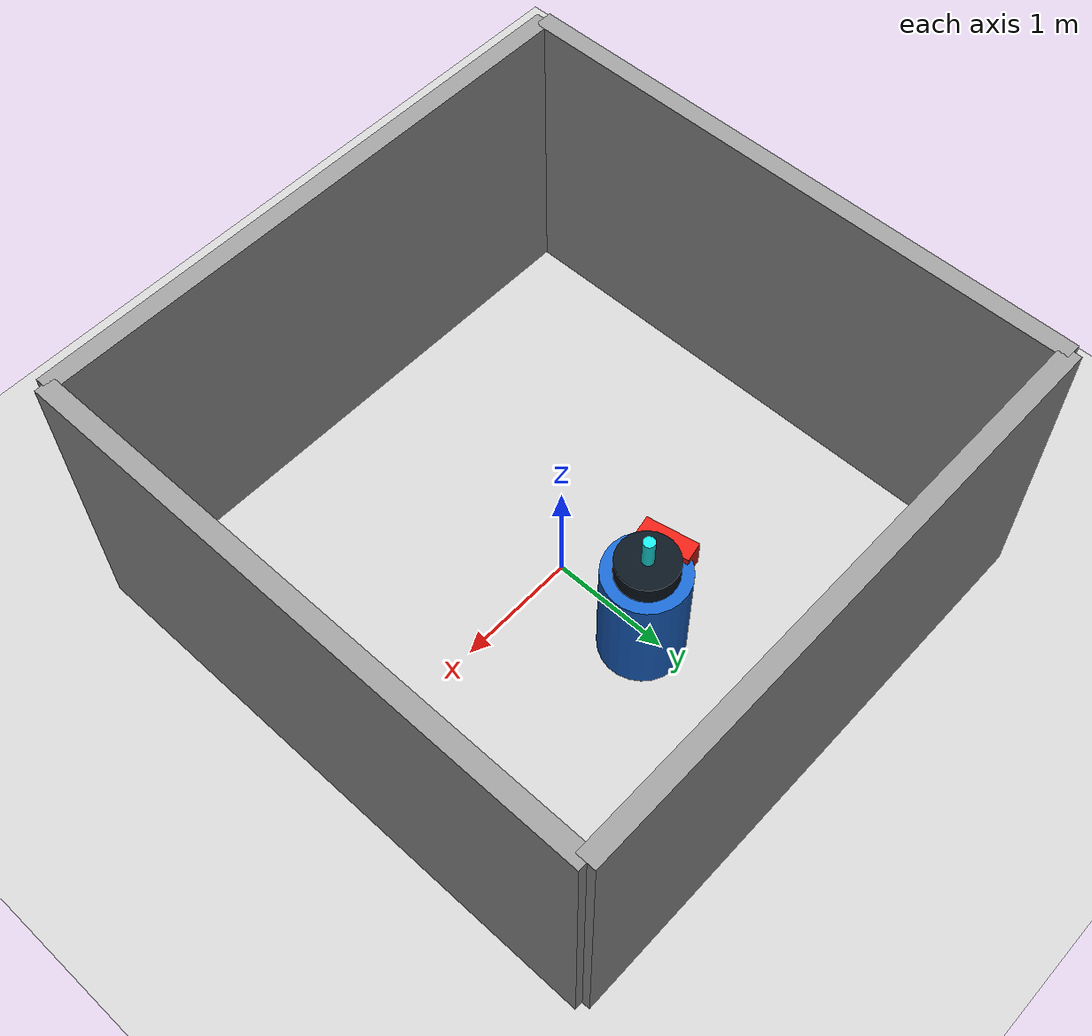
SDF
<sdf version="1.7">
 <world name="default">
  <plugin name="socnav_plugin" filename="libSocNavPlugin.so">
   <robot_name>robot</robot_name>
   <trajectory_file>/home/hunav_gz_classic_ws/SocNav3_trajectories/src6/000003890.json</trajectory_file>
   <human_slots>1</human_slots>
   <goal_angle_mesh>
    <angle_threshold>0.372560663759</angle_threshold>
    <uri>/home/hunav_gz_classic_ws/src/socnav_gazebo_reproducer/meshes/000003890_goal_angle_00.stl</uri>
   </goal_angle_mesh>
  </plugin>
  <light name="sun" type="directional">
   <pose>0 0 10 0 -0 0</pose>
   <diffuse>0.8 0.8 0.8 1</diffuse>
   <specular>0.2 0.2 0.2 1</specular>
   <attenuation>
    <range>1000</range>
    <constant>0.9</constant>
    <linear>0.01</linear>
    <quadratic>0.001</quadratic>
   </attenuation>
   <direction>-0.5 0.1 -0.9</direction>
   <spot><inner_angle>0</inner_angle><outer_angle>0</outer_angle><falloff>0</falloff></spot>
  </light>
  <model name="ground_plane">
   <static>1</static>
   <link name="link">
    <collision name="collision">
     <geometry><plane><normal>0 0 1</normal><size>100 100</size></plane></geometry>
     <surface><friction><ode><mu>100</mu><mu2>50</mu2></ode></friction></surface>
    </collision>
    <visual name="visual">
     <cast_shadows>0</cast_shadows>
     <geometry><plane><normal>0 0 1</normal><size>100 100</size></plane></geometry>
     <material>
      <script><uri>file://media/materials/scripts/kitchen.material</uri><name>Kitchen/CounterTop_H</name></script>
     </material>
    </visual>
   </link>
  </model>
  <gravity>0 0 -9.8</gravity>
  <magnetic_field>6e-06 2.3e-05 -4.2e-05</magnetic_field>
  <atmosphere type="adiabatic"/>
  <physics type="ode">
   <max_step_size>0.001</max_step_size>
   <real_time_factor>1</real_time_factor>
   <real_time_update_rate>1000</real_time_update_rate>
  </physics>
  <scene><ambient>0.4 0.4 0.4 1</ambient><background>0.7 0.7 0.7 1</background><shadows>1</shadows></scene>
  <audio><device>default</device></audio>
  <spherical_coordinates>
   <surface_model>EARTH_WGS84</surface_model>
   <latitude_deg>0</latitude_deg>
   <longitude_deg>0</longitude_deg>
   <elevation>0</elevation>
   <heading_deg>0</heading_deg>
  </spherical_coordinates>
  <model name="robot">
   <pose>0.06418650485800001 0.8672468019044978 0.5 0 0 -2.953853557334326</pose>
   <link name="link">
    <collision name="collision">
     <geometry><cylinder><radius>0.33672816101604575</radius><length>1.0</length></cylinder></geometry>
    </collision>
    <visual name="visual">
     <geometry><cylinder><radius>0.33672816101604575</radius><length>1.0</length></cylinder></geometry>
     <material><ambient>0.1 0.4 0.8 1</ambient><diffuse>0.1 0.4 0.8 1</diffuse></material>
    </visual>
    <visual name="robot_top">
     <pose>0 0 0.58 0 0 0</pose>
     <geometry><cylinder><radius>0.24244427593155293</radius><length>0.16</length></cylinder></geometry>
     <material><ambient>0.04 0.08 0.12 1</ambient><diffuse>0.04 0.08 0.12 1</diffuse></material>
    </visual>
    <visual name="robot_front">
     <pose>0.28285165525347844 0 0.44 0 0 0</pose>
     <geometry><box><size>0.16162951728770195 0.43101204610053856 0.24</size></box></geometry>
     <material><ambient>0.9 0.12 0.08 1</ambient><diffuse>0.9 0.12 0.08 1</diffuse></material>
    </visual>
    <visual name="robot_sensor">
     <pose>0 0 0.78 0 0 0</pose>
     <geometry><cylinder><radius>0.04714194254224641</radius><length>0.24</length></cylinder></geometry>
     <material><ambient>0.1 0.9 0.9 1</ambient><diffuse>0.1 0.9 0.9 1</diffuse></material>
    </visual>
   </link>
  </model>
  <model name="simple_world_test">
   <link name="Wall_0">
    <collision name="Wall_0_Collision">
     <geometry><box><size>4.699010791129615 0.15 2.5</size></box></geometry>
     <pose>0 0 1.25 0 -0 0</pose>
    </collision>
    <visual name="Wall_0_Visual">
     <pose>0 0 1.25 0 -0 0</pose>
     <geometry><box><size>4.699010791129615 0.15 2.5</size></box></geometry>
     <material>
      <script><uri>file://media/materials/scripts/gazebo.material</uri><name>Gazebo/Grey</name></script>
      <ambient>1 1 1 1</ambient>
     </material>
     <meta><layer>0</layer></meta>
    </visual>
    <pose>2.3395053955648075 0.0 0 0 -0 -1.5707963267948966</pose>
   </link>
   <link name="Wall_1">
    <collision name="Wall_1_Collision">
     <geometry><box><size>4.699010791129615 0.15 2.5</size></box></geometry>
     <pose>0 0 1.25 0 -0 0</pose>
    </collision>
    <visual name="Wall_1_Visual">
     <pose>0 0 1.25 0 -0 0</pose>
     <geometry><box><size>4.699010791129615 0.15 2.5</size></box></geometry>
     <material>
      <script><uri>file://media/materials/scripts/gazebo.material</uri><name>Gazebo/Grey</name></script>
      <ambient>1 1 1 1</ambient>
     </material>
     <meta><layer>0</layer></meta>
    </visual>
    <pose>0.0 -2.3395053955648075 0 0 -0 -3.141592653589793</pose>
   </link>
   <link name="Wall_2">
    <collision name="Wall_2_Collision">
     <geometry><box><size>4.699010791129615 0.15 2.5</size></box></geometry>
     <pose>0 0 1.25 0 -0 0</pose>
    </collision>
    <visual name="Wall_2_Visual">
     <pose>0 0 1.25 0 -0 0</pose>
     <geometry><box><size>4.699010791129615 0.15 2.5</size></box></geometry>
     <material>
      <script><uri>file://media/materials/scripts/gazebo.material</uri><name>Gazebo/Grey</name></script>
      <ambient>1 1 1 1</ambient>
     </material>
     <meta><layer>0</layer></meta>
    </visual>
    <pose>-2.3395053955648075 0.0 0 0 -0 1.5707963267948966</pose>
   </link>
   <link name="Wall_3">
    <collision name="Wall_3_Collision">
     <geometry><box><size>4.699010791129615 0.15 2.5</size></box></geometry>
     <pose>0 0 1.25 0 -0 0</pose>
    </collision>
    <visual name="Wall_3_Visual">
     <pose>0 0 1.25 0 -0 0</pose>
     <geometry><box><size>4.699010791129615 0.15 2.5</size></box></geometry>
     <material>
      <script><uri>file://media/materials/scripts/gazebo.material</uri><name>Gazebo/Grey</name></script>
      <ambient>1 1 1 1</ambient>
     </material>
     <meta><layer>0</layer></meta>
    </visual>
    <pose>0.0 2.3395053955648075 0 0 -0 0.0</pose>
   </link>
   <static>1</static>
  </model>
 </world>
</sdf>
